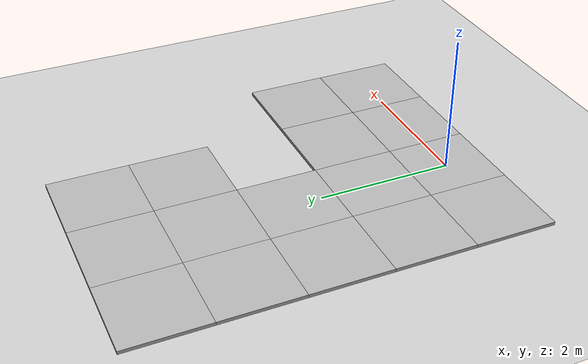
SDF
<?xml version="1.0"?>
<sdf version="1.4">
<world name="raceon_final_race">

  <include>
    <uri>model://sun</uri>
  </include>

  <model name="ground_plane">
    <static>true</static>
    <link name="link">
      <collision name="collision">
        <geometry>
          <plane>
            <normal>0 0 1</normal>
            <size>150 150</size>
          </plane>
        </geometry>
        <surface>
          <friction>
            <ode>
              <mu>100</mu>
              <mu2>50</mu2>
            </ode>
          </friction>
        </surface>
      </collision>
      <visual name="visual">
        <cast_shadows>false</cast_shadows>
        <geometry>
          <plane>
            <normal>0 0 1</normal>
            <size>150 150</size>
          </plane>
        </geometry>
        <material>
          <script>
            <uri>file://media/materials/scripts/gazebo.material</uri>
            <name>Gazebo/Grey</name>
          </script>
        </material>
      </visual>
    </link>
  </model>

  <!-- Track -->
  <include>
    <static>true</static>
    <name>1_1</name>
    <uri>model://racecar_description/models/segment_turn</uri>
    <pose>-1.21 0 0 0 0 -1.57079632679</pose>
  </include>

  <include>
    <static>true</static>
    <name>1_2</name>
    <uri>model://racecar_description/models/segment_straight</uri>
    <pose>0 0 0 0 0 0</pose>
  </include>

  <include>
    <static>true</static>
    <name>1_3</name>
    <uri>model://racecar_description/models/segment_straight</uri>
    <pose>1.21 0 0 0 0 0</pose>
  </include>

  <include>
    <static>true</static>
    <name>1_4</name>
    <uri>model://racecar_description/models/segment_turn</uri>
    <pose>2.42 0 0 0 0 0</pose>
  </include>

  <include>
    <static>true</static>
    <name>2_1</name>
    <uri>model://racecar_description/models/segment_straight</uri>
    <pose>-1.21 1.21 0 0 0 1.57079632679</pose>
  </include>

  <include>
    <static>true</static>
    <name>2_2</name>
    <uri>model://racecar_description/models/segment_turn</uri>
    <pose>0 1.21 0 0 0 -1.57079632679</pose>
  </include>

  <include>
    <static>true</static>
    <name>2_3</name>
    <uri>model://racecar_description/models/segment_straight</uri>
    <pose>1.21 1.21 0 0 0 0</pose>
  </include>

  <include>
    <static>true</static>
    <name>2_4</name>
    <uri>model://racecar_description/models/segment_turn</uri>
    <pose>2.42 1.21 0 0 0 1.57079632679</pose>
  </include>

  <include>
    <static>true</static>
    <name>3_1</name>
    <uri>model://racecar_description/models/segment_straight</uri>
    <pose>-1.21 2.42 0 0 0 1.57079632679</pose>
  </include>

  <include>
    <static>true</static>
    <name>3_2</name>
    <uri>model://racecar_description/models/segment_straight</uri>
    <pose>0 2.42 0 0 0 1.57079632679</pose>
  </include>

  <include>
    <static>true</static>
    <name>4_1</name>
    <uri>model://racecar_description/models/segment_straight</uri>
    <pose>-1.21 3.63 0 0 0 1.57079632679</pose>
  </include>

  <include>
    <static>true</static>
    <name>4_2</name>
    <uri>model://racecar_description/models/segment_turn</uri>
    <pose>0 3.63 0 0 0 3.14159265359</pose>
  </include>

  <include>
    <static>true</static>
    <name>4_3</name>
    <uri>model://racecar_description/models/segment_turn</uri>
    <pose>1.21 3.63 0 0 0 0</pose>
  </include>

  <include>
    <static>true</static>
    <name>5_1</name>
    <uri>model://racecar_description/models/segment_turn</uri>
    <pose>-1.21 4.84 0 0 0 3.14159265359</pose>
  </include>

  <include>
    <static>true</static>
    <name>5_2</name>
    <uri>model://racecar_description/models/segment_straight</uri>
    <pose>0 4.84 0 0 0 0</pose>
  </include>

  <include>
    <static>true</static>
    <name>5_3</name>
    <uri>model://racecar_description/models/segment_turn</uri>
    <pose>1.21 4.84 0 0 0 1.57079632679</pose>
  </include>

</world>
</sdf>

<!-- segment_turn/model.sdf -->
<sdf version="1.4">
  <model name="segment_turn">
    <link name='link'>
      <inertial>
        <mass>10</mass>
        <inertia>
          <ixx>0.166667</ixx>
          <ixy>0</ixy>
          <ixz>0</ixz>
          <iyy>0.166667</iyy>
          <iyz>0</iyz>
          <izz>0.166667</izz>
        </inertia>
        <pose frame=''>0 0 0 0 -0 0</pose>
      </inertial>
      <pose frame=''>0 0 0.025 0 -0 0</pose>
      <gravity>1</gravity>
      <self_collide>0</self_collide>
      <kinematic>0</kinematic>
      <enable_wind>0</enable_wind>
      <visual name='visual'>
        <pose frame=''>0 0 0 0 -0 0</pose>
        <geometry>
          <box>
            <size>1.21 1.21 0.05</size>
          </box>
        </geometry>
        <material>
          <lighting>1</lighting>
          <script>
              <uri>model://racecar_description/models/segment_turn/materials/scripts/segment_turn.material</uri>
            <name>SegmentTurn/Image</name>
          </script>
          <shader type='vertex'>
            <normal_map>__default__</normal_map>
          </shader>
          <ambient>0.3 0.3 0.3 1</ambient>
          <diffuse>0.7 0.7 0.7 1</diffuse>
          <specular>0.01 0.01 0.01 1</specular>
          <emissive>0 0 0 1</emissive>
        </material>
        <transparency>0</transparency>
        <cast_shadows>1</cast_shadows>
      </visual>
      <collision name='collision'>
        <laser_retro>0</laser_retro>
        <max_contacts>10</max_contacts>
        <pose frame=''>0 0 0 0 -0 0</pose>
        <geometry>
          <box>
            <size>1.21 1.21 0.05</size>
          </box>
        </geometry>
        <surface>
          <friction>
            <ode>
              <mu>1</mu>
              <mu2>1</mu2>
              <fdir1>0 0 0</fdir1>
              <slip1>0</slip1>
              <slip2>0</slip2>
            </ode>
            <torsional>
              <coefficient>1</coefficient>
              <patch_radius>0</patch_radius>
              <surface_radius>0</surface_radius>
              <use_patch_radius>1</use_patch_radius>
              <ode>
                <slip>0</slip>
              </ode>
            </torsional>
          </friction>
          <bounce>
            <restitution_coefficient>0</restitution_coefficient>
            <threshold>1e+06</threshold>
          </bounce>
          <contact>
            <collide_without_contact>0</collide_without_contact>
            <collide_without_contact_bitmask>1</collide_without_contact_bitmask>
            <collide_bitmask>1</collide_bitmask>
            <ode>
              <soft_cfm>0</soft_cfm>
              <soft_erp>0.2</soft_erp>
              <kp>1e+13</kp>
              <kd>1</kd>
              <max_vel>0.01</max_vel>
              <min_depth>0</min_depth>
            </ode>
            <bullet>
              <split_impulse>1</split_impulse>
              <split_impulse_penetration_threshold>-0.01</split_impulse_penetration_threshold>
              <soft_cfm>0</soft_cfm>
              <soft_erp>0.2</soft_erp>
              <kp>1e+13</kp>
              <kd>1</kd>
            </bullet>
          </contact>
        </surface>
      </collision>
    </link>
    <static>0</static>
    <allow_auto_disable>1</allow_auto_disable>
  </model>
</sdf>

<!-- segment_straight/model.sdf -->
<sdf version="1.4">
  <model name="segment_straight">
    <link name='link'>
      <inertial>
        <mass>10</mass>
        <inertia>
          <ixx>0.166667</ixx>
          <ixy>0</ixy>
          <ixz>0</ixz>
          <iyy>0.166667</iyy>
          <iyz>0</iyz>
          <izz>0.166667</izz>
        </inertia>
        <pose frame=''>0 0 0 0 -0 0</pose>
      </inertial>
      <pose frame=''>0 0 0.025 0 -0 0</pose>
      <gravity>1</gravity>
      <self_collide>0</self_collide>
      <kinematic>0</kinematic>
      <enable_wind>0</enable_wind>
      <visual name='visual'>
        <pose frame=''>0 0 0 0 -0 0</pose>
        <geometry>
          <box>
            <size>1.21 1.21 0.05</size>
          </box>
        </geometry>
        <material>
          <lighting>1</lighting>
          <script>
            <uri>model://racecar_description/models/segment_straight/materials/scripts/segment_straight.material</uri>
            <name>SegmentStraight/Image</name>
          </script>
          <shader type='vertex'>
            <normal_map>__default__</normal_map>
          </shader>
          <ambient>0.3 0.3 0.3 1</ambient>
          <diffuse>0.7 0.7 0.7 1</diffuse>
          <specular>0.01 0.01 0.01 1</specular>
          <emissive>0 0 0 1</emissive>
        </material>
        <transparency>0</transparency>
        <cast_shadows>1</cast_shadows>
      </visual>
      <collision name='collision'>
        <laser_retro>0</laser_retro>
        <max_contacts>10</max_contacts>
        <pose frame=''>0 0 0 0 -0 0</pose>
        <geometry>
          <box>
            <size>1.21 1.21 0.05</size>
          </box>
        </geometry>
        <surface>
          <friction>
            <ode>
              <mu>1</mu>
              <mu2>1</mu2>
              <fdir1>0 0 0</fdir1>
              <slip1>0</slip1>
              <slip2>0</slip2>
            </ode>
            <torsional>
              <coefficient>1</coefficient>
              <patch_radius>0</patch_radius>
              <surface_radius>0</surface_radius>
              <use_patch_radius>1</use_patch_radius>
              <ode>
                <slip>0</slip>
              </ode>
            </torsional>
          </friction>
          <bounce>
            <restitution_coefficient>0</restitution_coefficient>
            <threshold>1e+06</threshold>
          </bounce>
          <contact>
            <collide_without_contact>0</collide_without_contact>
            <collide_without_contact_bitmask>1</collide_without_contact_bitmask>
            <collide_bitmask>1</collide_bitmask>
            <ode>
              <soft_cfm>0</soft_cfm>
              <soft_erp>0.2</soft_erp>
              <kp>1e+13</kp>
              <kd>1</kd>
              <max_vel>0.01</max_vel>
              <min_depth>0</min_depth>
            </ode>
            <bullet>
              <split_impulse>1</split_impulse>
              <split_impulse_penetration_threshold>-0.01</split_impulse_penetration_threshold>
              <soft_cfm>0</soft_cfm>
              <soft_erp>0.2</soft_erp>
              <kp>1e+13</kp>
              <kd>1</kd>
            </bullet>
          </contact>
        </surface>
      </collision>
    </link>
    <static>0</static>
    <allow_auto_disable>1</allow_auto_disable>
  </model>
</sdf>
